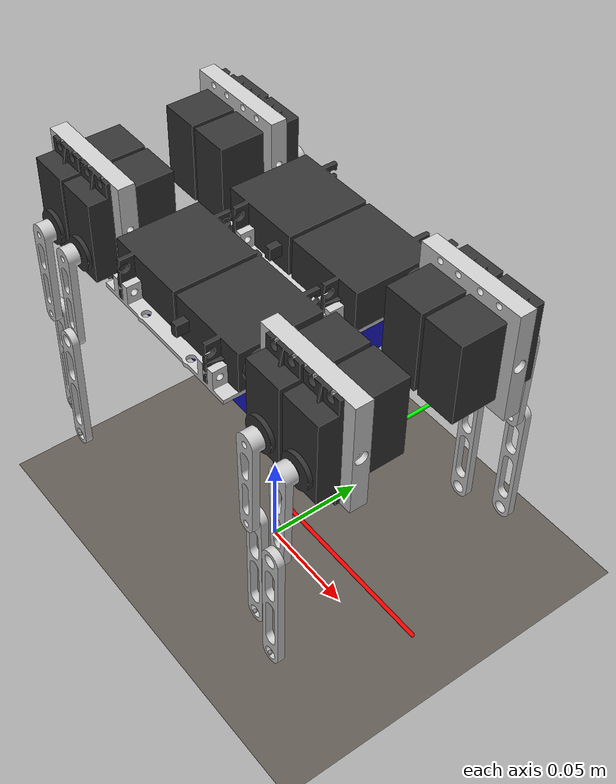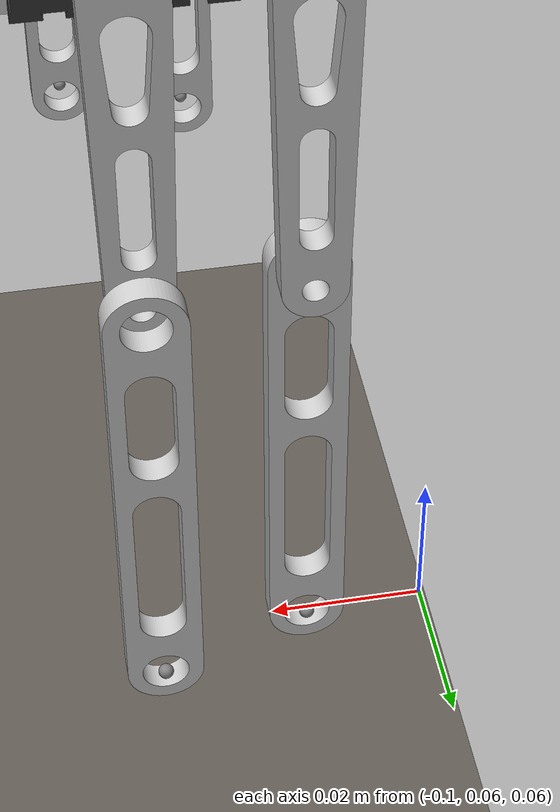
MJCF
<mujoco>

  <option gravity="0 0 -9.81" />

  <visual>
    <headlight diffuse="0.6 0.6 0.6" ambient="0.3 0.3 0.3" specular="0 0 0"/>
    <rgba haze="0.15 0.25 0.35 1"/>
    <global azimuth="120" elevation="-20"/>
  </visual>

  <asset>
    <texture type="skybox" builtin="gradient" rgb1="0.3 0.5 0.7" rgb2="0 0 0" width="512" height="3072"/>
    <texture type="2d" name="groundplane" builtin="checker" mark="edge" rgb1="0.4 0.4 0.4" rgb2="0.35 0.3 0.25"
      markrgb="0.1 0.2 0.3" width="300" height="300"/>
    <material name="groundplane" texture="groundplane" texuniform="true" texrepeat="5 5" reflectance="0.2"/>
  </asset>

  <worldbody>
    <light pos="0 0 1.5" dir="0 0 -1" directional="true"/>
    <geom name="floor" size="0 0 0.0001" type="plane" material="groundplane"/>

<body name="origin_axes" pos="0 0 0.03" >
  <geom type="capsule" size="0.001 0.1" rgba="1 0 0 1" fromto="0 0 0 0.1 0 0" contype="0" conaffinity="0"/>
  <geom type="capsule" size="0.001 0.1" rgba="0 1 0 1" fromto="0 0 0 0 0.1 0" contype="0" conaffinity="0"/>
  <geom type="capsule" size="0.001 0.1" rgba="0 0 1 1" fromto="0 0 0 0 0 0.1" contype="0" conaffinity="0"/>
</body>

  </worldbody>

<include file="robot.xml"/>

</mujoco>

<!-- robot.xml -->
<mujoco model="four_fivebar_planar_xz">
  <compiler angle="radian" meshdir="assets" autolimits="true"/>
  <option gravity="0 0 -9.81" timestep="0.001" integrator="implicitfast"/>

  <default>
    <joint damping="0.02" armature="0.0002" limited="false"/>
    <geom  contype="1" conaffinity="1" friction="0.6 0.1 0.1"/>
  </default>

  <asset>
    <material name="mat_left_arm"  rgba="0.6 0.0 0.0 1"/>
    <material name="mat_right_arm" rgba="0.0 0.6 0.0 1"/>
    <material name="mat_tilt" rgba="0.2 0.2 0.2 1"/>
    <material name="mat_servo" rgba="0.2 0.2 0.2 1"/>
    <material name="mat_plastic" rgba="0.8 0.8 0.8 1"/>
    <mesh file="shoulder_arm.stl" scale="0.001 0.001 0.001" name="shoulder_arm"/>
    <mesh file="elbow_arm.stl" scale="0.001 0.001 0.001" name="elbow_arm"/>
    <mesh file="two_servo_base.stl" scale="0.001 0.001 0.001" name="two_servo_base"/>
    <mesh file="two_servo.stl" scale="0.001 0.001 0.001" name="two_servo"/>
    <mesh file="shoulder_right_arm.stl" scale="0.001 0.001 0.001" name="shoulder_right_arm"/>
    <mesh file="elbow_right_arm.stl" scale="0.001 0.001 0.001" name="elbow_right_arm"/>
    <mesh file="servo_tilt.stl" scale="0.001 0.001 0.001" name="servo_tilt"/>
    <mesh file="base_tilt.stl" scale="0.001 0.001 0.001" name="base_tilt"/>
  </asset>

  <worldbody>

    <body name="robot" pos="0 0 0.16">
      <joint type="free" />
      <geom type="mesh" mesh="base_tilt" pos="0 0 0" material="mat_plastic"/>
      <geom type="mesh" mesh="servo_tilt" pos="0.042 0.038 0.012" material="mat_servo"/>
      <geom type="mesh" mesh="servo_tilt" pos="0.042 -0.038 0.012" euler="3.14159 0 0" material="mat_servo"/>
      <geom type="mesh" mesh="servo_tilt" pos="-0.042 0.018 0.012" euler="0 0 3.14159" material="mat_servo"/>
      <geom type="mesh" mesh="servo_tilt" pos="-0.042 -0.018 0.012" euler="3.14159 0 3.14159" material="mat_servo"/>
      <geom name="box_geom" type="box" pos="0 0 -0.01" size="0.0375 0.04 0.01" rgba="0.1 0.1 0.8 1"/>

      <!-- Camera sensor at (0,0,0.2) looking at +X -->
      <camera name="robot_camera" pos="0 0 0.3" euler="0 0 3.1416" fovy="60"/>

      <!-- =========================
           FRONT LEFT
           ========================= -->
      <body name="leg_FL" pos="0.075 -0.038 0.0125">

        <!-- Tilt added (already in your file) -->
        <joint name="FL_tilt" type="hinge" axis="1 0 0"/>
        <geom type="mesh" mesh="two_servo" material="mat_servo"/>
        <geom type="mesh" mesh="two_servo_base" material="mat_plastic"/>

        <!-- Left base -->
        <body name="FL_base_left" pos="-0.01 -0.024 -0.005">
          <body name="FL_shoulder_left" pos="0 0 -0.005" euler="0 0 0">
            <joint name="FL_shoulder_L" type="hinge" axis="0 -1 0"/>
            <geom type="mesh" mesh="shoulder_arm" material="mat_plastic"/>

            <body name="FL_elbow_left" pos="0 0.0035 -0.045">
              <joint name="FL_elbow_L" type="hinge" axis="0 -1 0"/>
              <geom type="mesh" mesh="elbow_arm" material="mat_plastic"/>
              <site  name="FL_tip_L" pos="0 0 -0.06" size="0.001"/>
            </body>
          </body>
        </body>

        <!-- Right base -->
        <body name="FL_base_right" pos="0.01 -0.024 -0.005">
          <body name="FL_shoulder_right" pos="0 0 -0.005">
            <joint name="FL_shoulder_R" type="hinge" axis="0 -1 0"/>
            <geom type="mesh" mesh="shoulder_arm" material="mat_plastic"/>

            <body name="FL_elbow_right" pos="0 -0.0035 -0.045">
              <joint name="FL_elbow_R" type="hinge" axis="0 -1 0"/>
              <geom type="mesh" mesh="elbow_arm" material="mat_plastic"/>
              <site  name="FL_tip_R" pos="0 0 -0.06" size="0.001"/>
            </body>
          </body>
        </body>
      </body>

      <!-- =========================
           FRONT RIGHT
           ========================= -->
      <body name="leg_FR" pos="0.075 0.038 0.0125">
        <!-- Tilt added (already in your file) -->
        <joint name="FR_tilt" type="hinge" axis="1 0 0"/>
        <geom type="mesh" mesh="two_servo" material="mat_servo" euler="0 0 3.141592"/>
        <geom type="mesh" mesh="two_servo_base" material="mat_plastic"/>

        <body name="FR_base_left" pos="-0.01 0.024 -0.005" >
          <body name="FR_shoulder_left" pos="0 0 -0.005" euler="0 0 0">
            <joint name="FR_shoulder_L" type="hinge" axis="0 1 0"/>
            <geom type="mesh" mesh="shoulder_right_arm" material="mat_plastic"/>

            <body name="FR_elbow_left" pos="0 -0.0035 -0.045">
              <joint name="FR_elbow_L" type="hinge" axis="0 1 0"/>
              <geom type="mesh" mesh="elbow_right_arm" material="mat_plastic"/>
              <site  name="FR_tip_L" pos="0 0 -0.06" size="0.001"/>
            </body>
          </body>
        </body>

        <body name="FR_base_right" pos="0.01 0.024 -0.005">
          <body name="FR_shoulder_right" pos="0 0 -0.005">
            <joint name="FR_shoulder_R" type="hinge" axis="0 1 0"/>
            <geom type="mesh" mesh="shoulder_right_arm" material="mat_plastic"/>

            <body name="FR_elbow_right" pos="0 0.0035 -0.045">
              <joint name="FR_elbow_R" type="hinge" axis="0 1 0"/>
              <geom type="mesh" mesh="elbow_right_arm" material="mat_plastic"/>
              <site  name="FR_tip_R" pos="0 0 -0.06" size="0.001"/>
            </body>
          </body>
        </body>
      </body>

      <!-- =========================
           REAR LEFT
           ========================= -->
      <body name="leg_RL" pos="-0.075 -0.038 0.0125">
        <!-- Tilt added (already in your file) -->
        <joint name="RL_tilt" type="hinge" axis="1 0 0"/>
        <geom type="mesh" mesh="two_servo" material="mat_servo" />
        <geom type="mesh" mesh="two_servo_base" euler="0 0 3.141592" material="mat_plastic"/>

        <body name="RL_base_left" pos="-0.01 -0.024 -0.005">
          <body name="RL_shoulder_left" pos="0 0 -0.005" euler="0 0 0">
            <joint name="RL_shoulder_L" type="hinge" axis="0 -1 0"/>
            <geom type="mesh" mesh="shoulder_arm" material="mat_plastic"/>

            <body name="RL_elbow_left" pos="0 0.0035 -0.045">
              <joint name="RL_elbow_L" type="hinge" axis="0 -1 0"/>
              <geom type="mesh" mesh="elbow_arm" material="mat_plastic"/>
              <site  name="RL_tip_L" pos="0 0 -0.06" size="0.001"/>
            </body>
          </body>
        </body>

        <body name="RL_base_right" pos="0.01 -0.024 -0.005">
          <body name="RL_shoulder_right" pos="0 0 -0.005">
            <joint name="RL_shoulder_R" type="hinge" axis="0 -1 0"/>
            <geom type="mesh" mesh="shoulder_arm" material="mat_plastic"/>

            <body name="RL_elbow_right" pos="0 -0.0035 -0.045">
              <joint name="RL_elbow_R" type="hinge" axis="0 -1 0"/>
              <geom type="mesh" mesh="elbow_arm" material="mat_plastic"/>
              <site  name="RL_tip_R" pos="0 0 -0.06" size="0.001"/>
            </body>
          </body>
        </body>
      </body>

      <!-- =========================
           REAR RIGHT
           ========================= -->
      <body name="leg_RR" pos="-0.075 0.038 0.0125">
        <!-- Tilt added (already in your file) -->
        <joint name="RR_tilt" type="hinge" axis="1 0 0"/>
        <geom type="mesh" mesh="two_servo" material="mat_servo" euler="0 0 3.141592"/>
        <geom type="mesh" mesh="two_servo_base" euler="0 0 3.141592" material="mat_plastic"/>

        <body name="RR_base_left" pos="-0.01 0.024 -0.005">
          <body name="RR_shoulder_left" pos="0 0 -0.005" euler="0 0 0">
            <joint name="RR_shoulder_L" type="hinge" axis="0 1 0"/>
            <geom type="mesh" mesh="shoulder_right_arm" material="mat_plastic"/>

            <body name="RR_elbow_left" pos="0 -0.0035 -0.045">
              <joint name="RR_elbow_L" type="hinge" axis="0 1 0"/>
              <geom type="mesh" mesh="elbow_right_arm" material="mat_plastic"/>
              <site  name="RR_tip_L" pos="0 0 -0.06" size="0.001"/>
            </body>
          </body>
        </body>

        <body name="RR_base_right" pos="0.01 0.024 -0.005">
          <body name="RR_shoulder_right" pos="0 0 -0.005">
            <joint name="RR_shoulder_R" type="hinge" axis="0 1 0"/>
            <geom type="mesh" mesh="shoulder_right_arm" material="mat_plastic"/>

            <body name="RR_elbow_right" pos="0 0.0035 -0.045">
              <joint name="RR_elbow_R" type="hinge" axis="0 1 0"/>
              <geom type="mesh" mesh="elbow_right_arm" material="mat_plastic"/>
              <site  name="RR_tip_R" pos="0 0 -0.06" size="0.001"/>
            </body>
          </body>
        </body>
      </body>

    </body> <!-- /robot -->
  </worldbody>

  <!-- Close each loop so the two distal sites coincide per leg -->
  <equality>
    <connect site1="FL_tip_L" site2="FL_tip_R" solref="0.002 1" solimp="0.95 0.99 0.001"/>
    <connect site1="FR_tip_L" site2="FR_tip_R" solref="0.002 1" solimp="0.95 0.99 0.001"/>
    <connect site1="RL_tip_L" site2="RL_tip_R" solref="0.002 1" solimp="0.95 0.99 0.001"/>
    <connect site1="RR_tip_L" site2="RR_tip_R" solref="0.002 1" solimp="0.95 0.99 0.001"/>
  </equality>

  <!-- Actuators: shoulders, plus tilt on every leg -->
  <actuator>
    <!-- FL -->
    <position name="motor_FL_shoulder_L" joint="FL_shoulder_L" kp="1" ctrlrange="-3.14159 3.14159"/>
    <position name="motor_FL_shoulder_R" joint="FL_shoulder_R" kp="1" ctrlrange="-3.14159 3.14159"/>
    <position name="motor_FL_tilt"       joint="FL_tilt"       kp="1" ctrlrange="-3.14159 3.14159"/>

    <!-- RL -->
    <position name="motor_RL_shoulder_L" joint="RL_shoulder_L" kp="1" ctrlrange="-3.14159 3.14159"/>
    <position name="motor_RL_shoulder_R" joint="RL_shoulder_R" kp="1" ctrlrange="-3.14159 3.14159"/>
    <position name="motor_RL_tilt"       joint="RL_tilt"       kp="1" ctrlrange="-3.14159 3.14159"/>

    <!-- FR -->
    <position name="motor_FR_shoulder_L" joint="FR_shoulder_L" kp="1" ctrlrange="-3.14159 3.14159"/>
    <position name="motor_FR_shoulder_R" joint="FR_shoulder_R" kp="1" ctrlrange="-3.14159 3.14159"/>
    <position name="motor_FR_tilt"       joint="FR_tilt"       kp="1" ctrlrange="-3.14159 3.14159"/>

    <!-- RR -->
    <position name="motor_RR_shoulder_L" joint="RR_shoulder_L" kp="1" ctrlrange="-3.14159 3.14159"/>
    <position name="motor_RR_shoulder_R" joint="RR_shoulder_R" kp="1" ctrlrange="-3.14159 3.14159"/>
    <position name="motor_RR_tilt"       joint="RR_tilt"       kp="1" ctrlrange="-3.14159 3.14159"/>
  </actuator>

  <!-- Keyframe with initial motor positions -->
  <keyframe>
    <key name="initial"
         ctrl="0 0 -1.5708 0 0 -1.5708 0 0 1.5708 0 0 1.5708"/>
  </keyframe>

  <!-- End-effector readouts (tip_L == tip_R per equality) -->
  <sensor>
    <!-- Body state sensors -->
    <framepos name="body_pos" objtype="body" objname="robot"/>
    <framequat name="body_quat" objtype="body" objname="robot"/>
    <framelinvel name="body_linvel" objtype="body" objname="robot"/>
    <frameangvel name="body_angvel" objtype="body" objname="robot"/>

    <!-- Joint position sensors (actuated joints only) -->
    <jointpos name="FL_tilt_pos" joint="FL_tilt"/>
    <jointpos name="FL_shoulder_L_pos" joint="FL_shoulder_L"/>
    <jointpos name="FL_shoulder_R_pos" joint="FL_shoulder_R"/>

    <jointpos name="FR_tilt_pos" joint="FR_tilt"/>
    <jointpos name="FR_shoulder_L_pos" joint="FR_shoulder_L"/>
    <jointpos name="FR_shoulder_R_pos" joint="FR_shoulder_R"/>

    <jointpos name="RL_tilt_pos" joint="RL_tilt"/>
    <jointpos name="RL_shoulder_L_pos" joint="RL_shoulder_L"/>
    <jointpos name="RL_shoulder_R_pos" joint="RL_shoulder_R"/>

    <jointpos name="RR_tilt_pos" joint="RR_tilt"/>
    <jointpos name="RR_shoulder_L_pos" joint="RR_shoulder_L"/>
    <jointpos name="RR_shoulder_R_pos" joint="RR_shoulder_R"/>

    <!-- Joint velocity sensors (actuated joints only) -->
    <jointvel name="FL_tilt_vel" joint="FL_tilt"/>
    <jointvel name="FL_shoulder_L_vel" joint="FL_shoulder_L"/>
    <jointvel name="FL_shoulder_R_vel" joint="FL_shoulder_R"/>

    <jointvel name="FR_tilt_vel" joint="FR_tilt"/>
    <jointvel name="FR_shoulder_L_vel" joint="FR_shoulder_L"/>
    <jointvel name="FR_shoulder_R_vel" joint="FR_shoulder_R"/>

    <jointvel name="RL_tilt_vel" joint="RL_tilt"/>
    <jointvel name="RL_shoulder_L_vel" joint="RL_shoulder_L"/>
    <jointvel name="RL_shoulder_R_vel" joint="RL_shoulder_R"/>

    <jointvel name="RR_tilt_vel" joint="RR_tilt"/>
    <jointvel name="RR_shoulder_L_vel" joint="RR_shoulder_L"/>
    <jointvel name="RR_shoulder_R_vel" joint="RR_shoulder_R"/>

    <!-- Foot position sensors -->
    <framepos name="FL_foot_pos" objtype="site" objname="FL_tip_L"/>
    <framepos name="FR_foot_pos" objtype="site" objname="FR_tip_L"/>
    <framepos name="RL_foot_pos" objtype="site" objname="RL_tip_L"/>
    <framepos name="RR_foot_pos" objtype="site" objname="RR_tip_L"/>

    <!-- Foot velocity sensors -->
    <framelinvel name="FL_foot_vel" objtype="site" objname="FL_tip_L"/>
    <framelinvel name="FR_foot_vel" objtype="site" objname="FR_tip_L"/>
    <framelinvel name="RL_foot_vel" objtype="site" objname="RL_tip_L"/>
    <framelinvel name="RR_foot_vel" objtype="site" objname="RR_tip_L"/>
  </sensor>
</mujoco>
